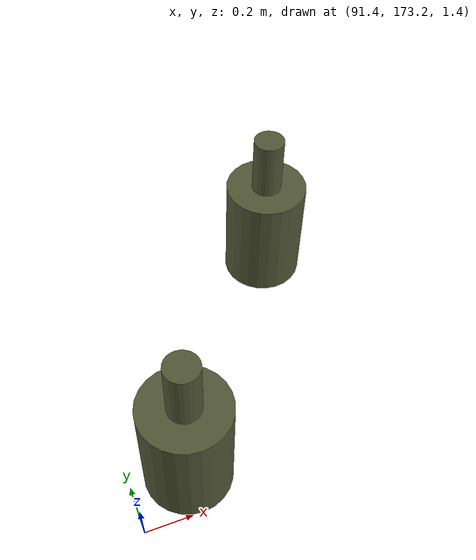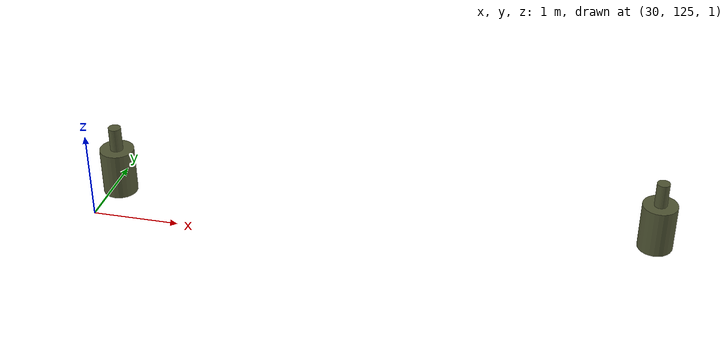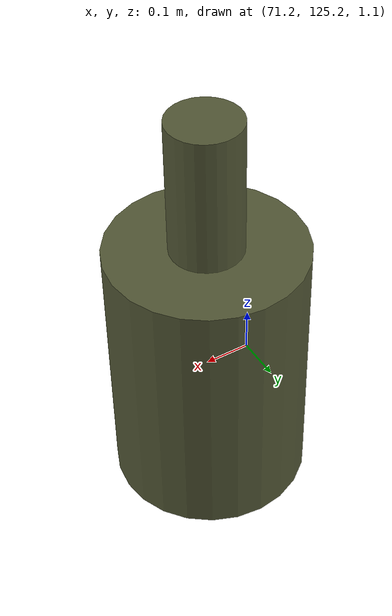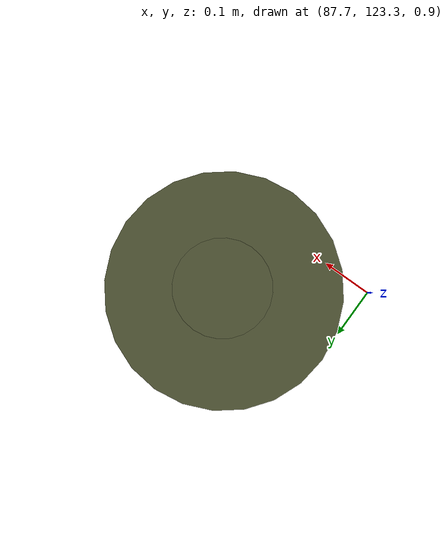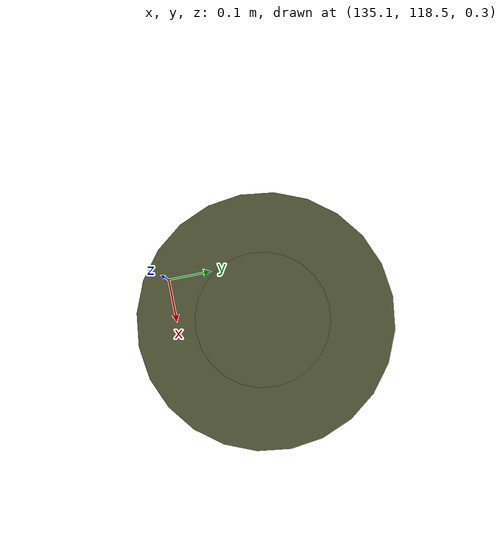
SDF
<sdf version="1.7">
 <world name="default">
  <light name="sun" type="directional">
   <pose>0 0 10 0 -0 0</pose>
   <diffuse>0.8 0.8 0.8 1</diffuse>
   <specular>0.2 0.2 0.2 1</specular>
   <attenuation>
    <range>1000</range>
    <constant>0.9</constant>
    <linear>0.01</linear>
    <quadratic>0.001</quadratic>
   </attenuation>
   <direction>-0.5 0.1 -0.9</direction>
   <spot><inner_angle>0</inner_angle><outer_angle>0</outer_angle><falloff>0</falloff></spot>
  </light>
  <gravity>0 0 -9.8</gravity>
  <magnetic_field>6e-06 2.3e-05 -4.2e-05</magnetic_field>
  <atmosphere type="adiabatic"/>
  <physics type="ode">
   <max_step_size>0.001</max_step_size>
   <real_time_factor>1</real_time_factor>
   <real_time_update_rate>1000</real_time_update_rate>
  </physics>
  <scene><ambient>0.4 0.4 0.4 1</ambient><background>0.7 0.7 0.7 1</background><shadows>0</shadows></scene>
  <spherical_coordinates>
   <surface_model>EARTH_WGS84</surface_model>
   <latitude_deg>46.339159</latitude_deg>
   <longitude_deg>3.433923</longitude_deg>
   <elevation>279.18</elevation>
   <heading_deg>180</heading_deg>
  </spherical_coordinates>
  <model name="obstacle_iso18497">
   <pose>139.991 135.329 0.440998 0.015616 0.019579 0.000147</pose>
   <static>1</static>
   <link name="link">
    <visual name="body">
     <pose>0 0 0.265 0 -0 0</pose>
     <geometry><cylinder><radius>0.19</radius><length>0.53</length></cylinder></geometry>
     <material><ambient>0.322 0.341 0.208 1</ambient><diffuse>0.322 0.341 0.208 1</diffuse></material>
    </visual>
    <visual name="head">
     <pose>0 0 0.665 0 -0 0</pose>
     <geometry><cylinder><radius>0.07</radius><length>0.27</length></cylinder></geometry>
     <material><ambient>0.322 0.341 0.208 1</ambient><diffuse>0.322 0.341 0.208 1</diffuse></material>
    </visual>
    <collision name="body_col">
     <pose>0 0 0.265 0 -0 0</pose>
     <geometry><cylinder><radius>0.19</radius><length>0.53</length></cylinder></geometry>
     <surface><contact><collide_without_contact>0</collide_without_contact></contact></surface>
    </collision>
    <collision name="head_col">
     <pose>0 0 0.665 0 -0 0</pose>
     <geometry><cylinder><radius>0.07</radius><length>0.27</length></cylinder></geometry>
     <surface><contact><collide_without_contact>0</collide_without_contact></contact></surface>
    </collision>
    <inertial>
     <mass>40</mass>
     <inertia><ixx>1</ixx><ixy>0</ixy><ixz>0</ixz><iyy>1</iyy><iyz>0</iyz><izz>1</izz></inertia>
    </inertial>
   </link>
  </model>
  <model name="obstacle_iso18497_clone">
   <pose>135.244 118.707 0.29308 0.012486 0.014415 4.3e-05</pose>
   <static>1</static>
   <link name="link">
    <visual name="body">
     <pose>0 0 0.265 0 -0 0</pose>
     <geometry><cylinder><radius>0.19</radius><length>0.53</length></cylinder></geometry>
     <material><ambient>0.322 0.341 0.208 1</ambient><diffuse>0.322 0.341 0.208 1</diffuse></material>
    </visual>
    <visual name="head">
     <pose>0 0 0.665 0 -0 0</pose>
     <geometry><cylinder><radius>0.07</radius><length>0.27</length></cylinder></geometry>
     <material><ambient>0.322 0.341 0.208 1</ambient><diffuse>0.322 0.341 0.208 1</diffuse></material>
    </visual>
    <collision name="body_col">
     <pose>0 0 0.265 0 -0 0</pose>
     <geometry><cylinder><radius>0.19</radius><length>0.53</length></cylinder></geometry>
     <surface><contact><collide_without_contact>0</collide_without_contact></contact></surface>
    </collision>
    <collision name="head_col">
     <pose>0 0 0.665 0 -0 0</pose>
     <geometry><cylinder><radius>0.07</radius><length>0.27</length></cylinder></geometry>
     <surface><contact><collide_without_contact>0</collide_without_contact></contact></surface>
    </collision>
    <inertial>
     <mass>40</mass>
     <inertia><ixx>1</ixx><ixy>0</ixy><ixz>0</ixz><iyy>1</iyy><iyz>0</iyz><izz>1</izz></inertia>
    </inertial>
   </link>
  </model>
  <model name="obstacle_iso18497_clone_clone_clone_clone">
   <pose>87.9252 123.465 0.901749 0.007101 0.010721 0.006147</pose>
   <static>1</static>
   <link name="link">
    <visual name="body">
     <pose>0 0 0.265 0 -0 0</pose>
     <geometry><cylinder><radius>0.19</radius><length>0.53</length></cylinder></geometry>
     <material><ambient>0.322 0.341 0.208 1</ambient><diffuse>0.322 0.341 0.208 1</diffuse></material>
    </visual>
    <visual name="head">
     <pose>0 0 0.665 0 -0 0</pose>
     <geometry><cylinder><radius>0.07</radius><length>0.27</length></cylinder></geometry>
     <material><ambient>0.322 0.341 0.208 1</ambient><diffuse>0.322 0.341 0.208 1</diffuse></material>
    </visual>
    <collision name="body_col">
     <pose>0 0 0.265 0 -0 0</pose>
     <geometry><cylinder><radius>0.19</radius><length>0.53</length></cylinder></geometry>
     <surface><contact><collide_without_contact>0</collide_without_contact></contact></surface>
    </collision>
    <collision name="head_col">
     <pose>0 0 0.665 0 -0 0</pose>
     <geometry><cylinder><radius>0.07</radius><length>0.27</length></cylinder></geometry>
     <surface><contact><collide_without_contact>0</collide_without_contact></contact></surface>
    </collision>
    <inertial>
     <mass>40</mass>
     <inertia><ixx>1</ixx><ixy>0</ixy><ixz>0</ixz><iyy>1</iyy><iyz>0</iyz><izz>1</izz></inertia>
    </inertial>
   </link>
  </model>
  <model name="obstacle_iso18497_clone_clone_clone_clone_clone_clone">
   <pose>71.4272 125.42 1.10976 0.007129 0.010678 0.006131</pose>
   <static>1</static>
   <link name="link">
    <visual name="body">
     <pose>0 0 0.265 0 -0 0</pose>
     <geometry><cylinder><radius>0.19</radius><length>0.53</length></cylinder></geometry>
     <material><ambient>0.322 0.341 0.208 1</ambient><diffuse>0.322 0.341 0.208 1</diffuse></material>
    </visual>
    <visual name="head">
     <pose>0 0 0.665 0 -0 0</pose>
     <geometry><cylinder><radius>0.07</radius><length>0.27</length></cylinder></geometry>
     <material><ambient>0.322 0.341 0.208 1</ambient><diffuse>0.322 0.341 0.208 1</diffuse></material>
    </visual>
    <collision name="body_col">
     <pose>0 0 0.265 0 -0 0</pose>
     <geometry><cylinder><radius>0.19</radius><length>0.53</length></cylinder></geometry>
     <surface><contact><collide_without_contact>0</collide_without_contact></contact></surface>
    </collision>
    <collision name="head_col">
     <pose>0 0 0.665 0 -0 0</pose>
     <geometry><cylinder><radius>0.07</radius><length>0.27</length></cylinder></geometry>
     <surface><contact><collide_without_contact>0</collide_without_contact></contact></surface>
    </collision>
    <inertial>
     <mass>40</mass>
     <inertia><ixx>1</ixx><ixy>0</ixy><ixz>0</ixz><iyy>1</iyy><iyz>0</iyz><izz>1</izz></inertia>
    </inertial>
   </link>
  </model>
  <model name="obstacle_iso18497_clone_clone_clone_clone_clone_clone_clone">
   <pose>98.71 157.812 1.1427 0.011588 0.009285 0.006116</pose>
   <static>1</static>
   <link name="link">
    <visual name="body">
     <pose>0 0 0.265 0 -0 0</pose>
     <geometry><cylinder><radius>0.19</radius><length>0.53</length></cylinder></geometry>
     <material><ambient>0.322 0.341 0.208 1</ambient><diffuse>0.322 0.341 0.208 1</diffuse></material>
    </visual>
    <visual name="head">
     <pose>0 0 0.665 0 -0 0</pose>
     <geometry><cylinder><radius>0.07</radius><length>0.27</length></cylinder></geometry>
     <material><ambient>0.322 0.341 0.208 1</ambient><diffuse>0.322 0.341 0.208 1</diffuse></material>
    </visual>
    <collision name="body_col">
     <pose>0 0 0.265 0 -0 0</pose>
     <geometry><cylinder><radius>0.19</radius><length>0.53</length></cylinder></geometry>
     <surface><contact><collide_without_contact>0</collide_without_contact></contact></surface>
    </collision>
    <collision name="head_col">
     <pose>0 0 0.665 0 -0 0</pose>
     <geometry><cylinder><radius>0.07</radius><length>0.27</length></cylinder></geometry>
     <surface><contact><collide_without_contact>0</collide_without_contact></contact></surface>
    </collision>
    <inertial>
     <mass>40</mass>
     <inertia><ixx>1</ixx><ixy>0</ixy><ixz>0</ixz><iyy>1</iyy><iyz>0</iyz><izz>1</izz></inertia>
    </inertial>
   </link>
  </model>
  <model name="obstacle_iso18497_clone_clone_clone_clone_clone_clone_clone_clone">
   <pose>91.6538 173.417 1.32997 0.011565 0.009305 0.006116</pose>
   <static>1</static>
   <link name="link">
    <visual name="body">
     <pose>0 0 0.265 0 -0 0</pose>
     <geometry><cylinder><radius>0.19</radius><length>0.53</length></cylinder></geometry>
     <material><ambient>0.322 0.341 0.208 1</ambient><diffuse>0.322 0.341 0.208 1</diffuse></material>
    </visual>
    <visual name="head">
     <pose>0 0 0.665 0 -0 0</pose>
     <geometry><cylinder><radius>0.07</radius><length>0.27</length></cylinder></geometry>
     <material><ambient>0.322 0.341 0.208 1</ambient><diffuse>0.322 0.341 0.208 1</diffuse></material>
    </visual>
    <collision name="body_col">
     <pose>0 0 0.265 0 -0 0</pose>
     <geometry><cylinder><radius>0.19</radius><length>0.53</length></cylinder></geometry>
     <surface><contact><collide_without_contact>0</collide_without_contact></contact></surface>
    </collision>
    <collision name="head_col">
     <pose>0 0 0.665 0 -0 0</pose>
     <geometry><cylinder><radius>0.07</radius><length>0.27</length></cylinder></geometry>
     <surface><contact><collide_without_contact>0</collide_without_contact></contact></surface>
    </collision>
    <inertial>
     <mass>40</mass>
     <inertia><ixx>1</ixx><ixy>0</ixy><ixz>0</ixz><iyy>1</iyy><iyz>0</iyz><izz>1</izz></inertia>
    </inertial>
   </link>
  </model>
  <model name="obstacle_iso18497_clone_clone_clone_clone_clone_clone_clone_clone_0">
   <pose>92.4129 174.434 1.31206 0.011587 0.009278 0.006116</pose>
   <static>1</static>
   <link name="link">
    <visual name="body">
     <pose>0 0 0.265 0 -0 0</pose>
     <geometry><cylinder><radius>0.19</radius><length>0.53</length></cylinder></geometry>
     <material><ambient>0.322 0.341 0.208 1</ambient><diffuse>0.322 0.341 0.208 1</diffuse></material>
    </visual>
    <visual name="head">
     <pose>0 0 0.665 0 -0 0</pose>
     <geometry><cylinder><radius>0.07</radius><length>0.27</length></cylinder></geometry>
     <material><ambient>0.322 0.341 0.208 1</ambient><diffuse>0.322 0.341 0.208 1</diffuse></material>
    </visual>
    <collision name="body_col">
     <pose>0 0 0.265 0 -0 0</pose>
     <geometry><cylinder><radius>0.19</radius><length>0.53</length></cylinder></geometry>
     <surface><contact><collide_without_contact>0</collide_without_contact></contact></surface>
    </collision>
    <collision name="head_col">
     <pose>0 0 0.665 0 -0 0</pose>
     <geometry><cylinder><radius>0.07</radius><length>0.27</length></cylinder></geometry>
     <surface><contact><collide_without_contact>0</collide_without_contact></contact></surface>
    </collision>
    <inertial>
     <mass>40</mass>
     <inertia><ixx>1</ixx><ixy>0</ixy><ixz>0</ixz><iyy>1</iyy><iyz>0</iyz><izz>1</izz></inertia>
    </inertial>
   </link>
  </model>
  <model name="obstacle_iso18497_clone_clone_clone_clone_clone_clone_clone_clone_clone">
   <pose>79.1259 177.933 1.62267 0.011567 0.009305 0.006119</pose>
   <static>1</static>
   <link name="link">
    <visual name="body">
     <pose>0 0 0.265 0 -0 0</pose>
     <geometry><cylinder><radius>0.19</radius><length>0.53</length></cylinder></geometry>
     <material><ambient>0.322 0.341 0.208 1</ambient><diffuse>0.322 0.341 0.208 1</diffuse></material>
    </visual>
    <visual name="head">
     <pose>0 0 0.665 0 -0 0</pose>
     <geometry><cylinder><radius>0.07</radius><length>0.27</length></cylinder></geometry>
     <material><ambient>0.322 0.341 0.208 1</ambient><diffuse>0.322 0.341 0.208 1</diffuse></material>
    </visual>
    <collision name="body_col">
     <pose>0 0 0.265 0 -0 0</pose>
     <geometry><cylinder><radius>0.19</radius><length>0.53</length></cylinder></geometry>
     <surface><contact><collide_without_contact>0</collide_without_contact></contact></surface>
    </collision>
    <collision name="head_col">
     <pose>0 0 0.665 0 -0 0</pose>
     <geometry><cylinder><radius>0.07</radius><length>0.27</length></cylinder></geometry>
     <surface><contact><collide_without_contact>0</collide_without_contact></contact></surface>
    </collision>
    <inertial>
     <mass>40</mass>
     <inertia><ixx>1</ixx><ixy>0</ixy><ixz>0</ixz><iyy>1</iyy><iyz>0</iyz><izz>1</izz></inertia>
    </inertial>
   </link>
  </model>
  <model name="obstacle_iso18497_clone_clone_clone_clone_clone_clone_clone_0">
   <pose>66.2472 107.934 1.25389 -0.001075 -0.010635 0.005575</pose>
   <static>1</static>
   <link name="link">
    <visual name="body">
     <pose>0 0 0.265 0 -0 0</pose>
     <geometry><cylinder><radius>0.19</radius><length>0.53</length></cylinder></geometry>
     <material><ambient>0.322 0.341 0.208 1</ambient><diffuse>0.322 0.341 0.208 1</diffuse></material>
    </visual>
    <visual name="head">
     <pose>0 0 0.665 0 -0 0</pose>
     <geometry><cylinder><radius>0.07</radius><length>0.27</length></cylinder></geometry>
     <material><ambient>0.322 0.341 0.208 1</ambient><diffuse>0.322 0.341 0.208 1</diffuse></material>
    </visual>
    <collision name="body_col">
     <pose>0 0 0.265 0 -0 0</pose>
     <geometry><cylinder><radius>0.19</radius><length>0.53</length></cylinder></geometry>
     <surface><contact><collide_without_contact>0</collide_without_contact></contact></surface>
    </collision>
    <collision name="head_col">
     <pose>0 0 0.665 0 -0 0</pose>
     <geometry><cylinder><radius>0.07</radius><length>0.27</length></cylinder></geometry>
     <surface><contact><collide_without_contact>0</collide_without_contact></contact></surface>
    </collision>
    <inertial>
     <mass>40</mass>
     <inertia><ixx>1</ixx><ixy>0</ixy><ixz>0</ixz><iyy>1</iyy><iyz>0</iyz><izz>1</izz></inertia>
    </inertial>
   </link>
  </model>
  <model name="obstacle_iso18497_clone_clone_clone_clone_clone_clone_clone_0_clone">
   <pose>36.2808 125.321 1.30026 0.021935 0.01268 0.005578</pose>
   <static>1</static>
   <link name="link">
    <visual name="body">
     <pose>0 0 0.265 0 -0 0</pose>
     <geometry><cylinder><radius>0.19</radius><length>0.53</length></cylinder></geometry>
     <material><ambient>0.322 0.341 0.208 1</ambient><diffuse>0.322 0.341 0.208 1</diffuse></material>
    </visual>
    <visual name="head">
     <pose>0 0 0.665 0 -0 0</pose>
     <geometry><cylinder><radius>0.07</radius><length>0.27</length></cylinder></geometry>
     <material><ambient>0.322 0.341 0.208 1</ambient><diffuse>0.322 0.341 0.208 1</diffuse></material>
    </visual>
    <collision name="body_col">
     <pose>0 0 0.265 0 -0 0</pose>
     <geometry><cylinder><radius>0.19</radius><length>0.53</length></cylinder></geometry>
     <surface><contact><collide_without_contact>0</collide_without_contact></contact></surface>
    </collision>
    <collision name="head_col">
     <pose>0 0 0.665 0 -0 0</pose>
     <geometry><cylinder><radius>0.07</radius><length>0.27</length></cylinder></geometry>
     <surface><contact><collide_without_contact>0</collide_without_contact></contact></surface>
    </collision>
    <inertial>
     <mass>40</mass>
     <inertia><ixx>1</ixx><ixy>0</ixy><ixz>0</ixz><iyy>1</iyy><iyz>0</iyz><izz>1</izz></inertia>
    </inertial>
   </link>
  </model>
  <model name="obstacle_iso18497_clone_clone_clone_clone_clone_clone_clone_0_clone_0">
   <pose>30.3733 124.982 1.39164 0.021934 0.012677 0.005585</pose>
   <static>1</static>
   <link name="link">
    <visual name="body">
     <pose>0 0 0.265 0 -0 0</pose>
     <geometry><cylinder><radius>0.19</radius><length>0.53</length></cylinder></geometry>
     <material><ambient>0.322 0.341 0.208 1</ambient><diffuse>0.322 0.341 0.208 1</diffuse></material>
    </visual>
    <visual name="head">
     <pose>0 0 0.665 0 -0 0</pose>
     <geometry><cylinder><radius>0.07</radius><length>0.27</length></cylinder></geometry>
     <material><ambient>0.322 0.341 0.208 1</ambient><diffuse>0.322 0.341 0.208 1</diffuse></material>
    </visual>
    <collision name="body_col">
     <pose>0 0 0.265 0 -0 0</pose>
     <geometry><cylinder><radius>0.19</radius><length>0.53</length></cylinder></geometry>
     <surface><contact><collide_without_contact>0</collide_without_contact></contact></surface>
    </collision>
    <collision name="head_col">
     <pose>0 0 0.665 0 -0 0</pose>
     <geometry><cylinder><radius>0.07</radius><length>0.27</length></cylinder></geometry>
     <surface><contact><collide_without_contact>0</collide_without_contact></contact></surface>
    </collision>
    <inertial>
     <mass>40</mass>
     <inertia><ixx>1</ixx><ixy>0</ixy><ixz>0</ixz><iyy>1</iyy><iyz>0</iyz><izz>1</izz></inertia>
    </inertial>
   </link>
  </model>
 </world>
</sdf>
